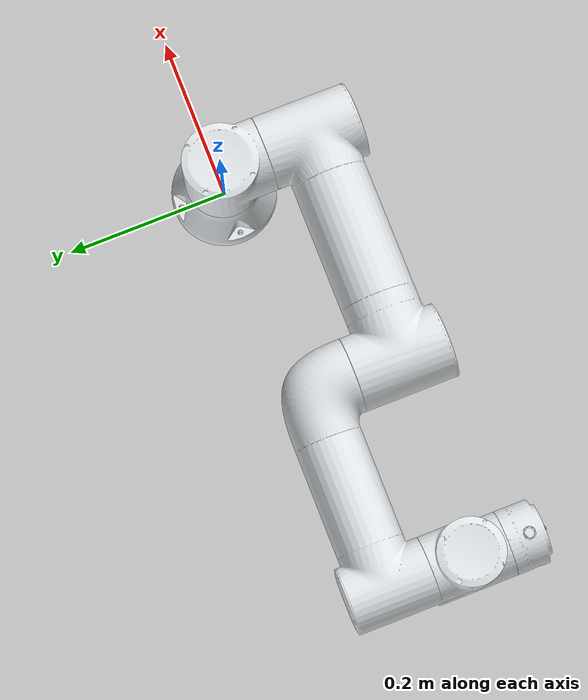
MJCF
<mujoco model="zarm">
  <compiler angle="radian" autolimits="true" />
  <option integrator="implicitfast"/>
  <default>
    <!-- Keep common joint/actuator defaults at the top-level so robosuite can parse them -->
    <joint armature="0.1"/>
    <general gaintype="fixed" biastype="affine" gainprm="2000" biasprm="0 -2000 -400" forcerange="-150 150"/>

    <default class="zarm_j1">
      <joint range="-3.0543 3.0543" />
      <general ctrlrange="-3.0543 3.0543" forcerange="-150 150" />
    </default>
    <default class="zarm_j2">
      <joint range="-4.6251 1.4835" />
      <general ctrlrange="-4.6251 1.4835" forcerange="-150 150" />
    </default>
    <default class="zarm_j3">
      <joint range="-2.8274 2.8274" />
      <general ctrlrange="-2.8274 2.8274" forcerange="-150 150" />
    </default>
    <default class="zarm_j4">
      <joint range="-4.6251 1.4835" />
      <general ctrlrange="-4.6251 1.4835" gainprm="500" biasprm="0 -500 -100" forcerange="-28 28" />
    </default>
    <default class="zarm_j5">
      <joint range="-3.0543 3.0543" />
      <general ctrlrange="-3.0543 3.0543" gainprm="500" biasprm="0 -500 -100" forcerange="-28 28" />
    </default>
    <default class="zarm_j6">
      <joint range="-3.0543 3.0543" />
      <general ctrlrange="-3.0543 3.0543" gainprm="500" biasprm="0 -500 -100" forcerange="-28 28" />
    </default>

    <default class="visual">
      <geom contype="0" conaffinity="0" group="2" material="visualgeom" />
    </default>
    <default class="collision">
      <geom contype="1" conaffinity="1" condim="4" group="1" material="collision_material" />
    </default>
  </default>

  <asset>
    <material name="visualgeom" rgba="1 1 1 1" specular="0.5" shininess="0.25"/>
    <material name="collision_material" rgba="0 0 0 0" />
    <texture name="texplane" type="2d" builtin="checker" rgb1="0.2 0.3 0.4" rgb2="0.1 0.2 0.3" width="100" height="100" />
    <material name="matplane" texture="texplane" texrepeat="1 1" texuniform="true" />
    <mesh name="base_link" file="meshes/base_link.STL" />
    <mesh name="shoulder_link" file="meshes/shoulder_link.STL" />
    <mesh name="upperarm_link" file="meshes/upperarm_link.STL" />
    <mesh name="forearm_link" file="meshes/forearm_link.STL" />
    <mesh name="wrist1_link" file="meshes/wrist1_link.STL" />
    <mesh name="wrist2_link" file="meshes/wrist2_link.STL" />
    <mesh name="wrist3_link" file="meshes/wrist3_link.STL" />
    <mesh name="base_link_visual" file="meshes/base_link.obj" />
    <mesh name="shoulder_link_visual" file="meshes/shoulder_link.obj" />
    <mesh name="upperarm_link_visual" file="meshes/upperarm_link.obj" />
    <mesh name="forearm_link_visual" file="meshes/forearm_link.obj" />
    <mesh name="wrist1_link_visual" file="meshes/wrist1_link.obj" />
    <mesh name="wrist2_link_visual" file="meshes/wrist2_link.obj" />
    <mesh name="wrist3_link_visual" file="meshes/wrist3_link.obj" />
  </asset>
  <worldbody>
    <body name="root" pos="0 0 0.0">
      <inertial pos="-0.00049027 -0.00045095 0.032527" mass="0.78393" diaginertia="0.0013854 0.0013849 0.001977" />
      <body name="shoulder_link">
        <inertial pos="-3.8658e-07 -0.0024176 0.13519" quat="0.99894 0.046032 1.3278e-05 -3.93343e-05" mass="2.1225" diaginertia="0.0033227 0.0032419 0.0023129" />
        <joint name="shoulder_pan_joint" class="zarm_j1" pos="0 0 0" axis="0 0 1"  />
        <geom name="shoulder_link_collision_0" type="mesh" rgba="0 0 0 0" mesh="shoulder_link" class="collision" />
        <body name="upperarm_link" pos="0 0 0.14" quat="0.707105 0.707108 0 0">
          <inertial pos="-0.14111 3.4656e-06 0.11053" quat="0.49815 0.501844 0.501844 0.49815" mass="4.8053" diaginertia="0.0081317 0.0059231 0.0075945" />
          <joint name="shoulder_lift_joint" class="zarm_j2" pos="0 0 0" axis="0 0 1"  />
          <geom name="upperarm_link_collision_0" type="mesh" rgba="0 0 0 0" mesh="upperarm_link" class="collision" />
          <body name="forearm_link" pos="-0.28 0 0">
            <inertial pos="-0.18987 5.2268e-06 0.0034145" quat="0.505712 0.494222 0.494276 0.505659" mass="2.2312" diaginertia="0.0035145 0.0029186 0.0028852" />
            <joint name="elbow_joint" class="zarm_j3" pos="0 0 0" axis="0 0 1"  />
            <geom name="forearm_link_collision_0" type="mesh" rgba="0 0 0 0" mesh="forearm_link" class="collision" />
            <body name="wrist1_link" pos="-0.24001 0 0">
              <inertial pos="4.5665e-07 -0.0034666 0.098292" quat="0.728043 0.685531 -0.000124687 0.000140596" mass="1.5961" diaginertia="0.0020112 0.0019076 0.0014524" />
              <joint name="wrist_1_joint" class="zarm_j4" pos="0 0 0" axis="0 0 1"  />
              <geom name="wrist1_link_collision_0" type="mesh" rgba="0 0 0 0" mesh="wrist1_link" class="collision" />
              <body name="wrist2_link" pos="0 0 0.102" quat="0.707105 0.707108 0 0">
                <inertial pos="-4.5262e-07 0.0034666 0.098292" quat="0.685531 0.728043 0.000140596 -0.000124687" mass="1.5961" diaginertia="0.0020112 0.0019076 0.0014524" />
                <joint name="wrist_2_joint" class="zarm_j5" pos="0 0 0" axis="0 0 1"  />
                <geom name="wrist2_link_collision_0" type="mesh" rgba="0 0 0 0" mesh="wrist2_link" class="collision" />
                <body name="wrist3_link" pos="0 0 0.102" quat="0.707105 -0.707108 0 0">
                  <inertial pos="7.559e-05 1.3858e-05 0.076619" quat="0.000863331 0.707146 0.000390787 0.707067" mass="0.53877" diaginertia="0.00042655 0.00028896 0.00028785" />
                  <joint name="wrist_3_joint" class="zarm_j6" pos="0 0 0" axis="0 0 1"  />
                  <geom name="wrist3_link_collision_0" type="mesh" rgba="0 0 0 0" mesh="wrist3_link" class="collision" />
                  <geom class="visual" name="wrist3_link_visual_0" quat="1.0 0.0 0.0 0.0" rgba="0.89804 0.91765 0.92941 1" type="mesh" mesh="wrist3_link_visual" />

                  <!-- robosuite-compatible attachment frame and wrist camera -->
                  <site name="attachment_site" pos="0 0 0.1" quat="-1 1 0 0"/>
                  <site name="right_center" pos="0 0 0.1" quat="-1 1 0 0"/>
                  <camera name="wrist_camera" pos="0 0.05 0.02" quat="1 0 0 0" fovy="58" mode="fixed"/>

                  <!-- robosuite expects this body as the gripper eef frame -->
                  <body name="right_hand" pos="0 0 0.098" quat="0.707 -0.707 0 0"/>

                  <!-- Dummy tool0 to match URDF semantics; no geom -->
                  <body name="tool0" pos="0 0 0.1" euler="-1.5707963267948966 0 0"/>
                </body>
                <geom class="visual" name="wrist2_link_visual_0" quat="1.0 0.0 0.0 0.0" rgba="0.89804 0.91765 0.92941 1" type="mesh" mesh="wrist2_link_visual" />
              </body>
              <geom class="visual" name="wrist1_link_visual_0" quat="1.0 0.0 0.0 0.0" rgba="0.89804 0.91765 0.92941 1" type="mesh" mesh="wrist1_link_visual" />
            </body>
            <geom class="visual" name="forearm_link_visual_0" quat="1.0 0.0 0.0 0.0" rgba="0.89804 0.91765 0.92941 1" type="mesh" mesh="forearm_link_visual" />
          </body>
          <geom class="visual" name="upperarm_link_visual_0" quat="1.0 0.0 0.0 0.0" rgba="0.89804 0.91765 0.92941 1" type="mesh" mesh="upperarm_link_visual" />
        </body>
        <geom class="visual" name="shoulder_link_visual_0" quat="1.0 0.0 0.0 0.0" rgba="0.89804 0.91765 0.92941 1" type="mesh" mesh="shoulder_link_visual" />
      </body>
      <geom class="visual" name="root_visual_0" quat="1.0 0.0 0.0 0.0" rgba="0.89804 0.91765 0.92941 1" type="mesh" mesh="base_link_visual" />
    </body>
  </worldbody>

  <actuator>
    <general name="shoulder_pan" joint="shoulder_pan_joint" class="zarm_j1" />
    <general name="shoulder_lift" joint="shoulder_lift_joint" class="zarm_j2" />
    <general name="elbow" joint="elbow_joint" class="zarm_j3" />
    <general name="wrist_1" joint="wrist_1_joint" class="zarm_j4" />
    <general name="wrist_2" joint="wrist_2_joint" class="zarm_j5" />
    <general name="wrist_3" joint="wrist_3_joint" class="zarm_j6" />
  </actuator>
</mujoco>
